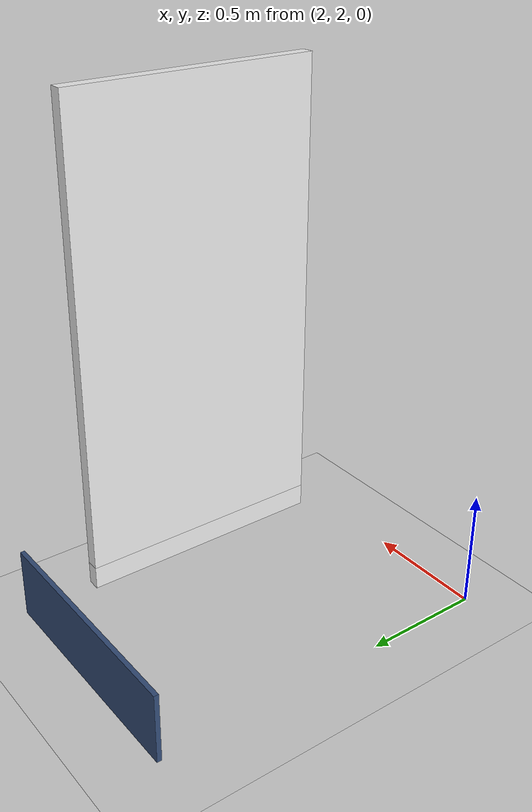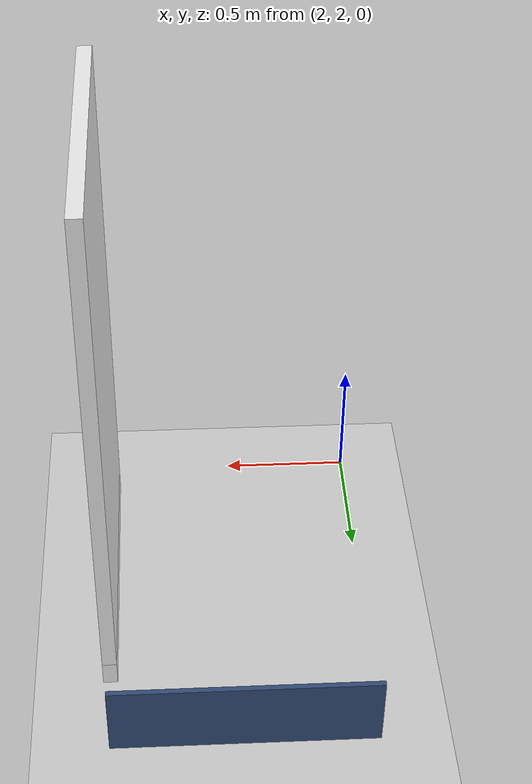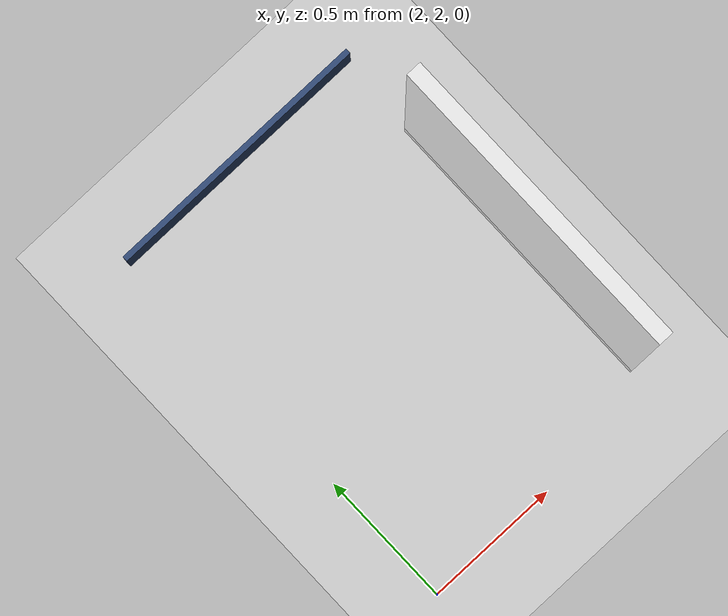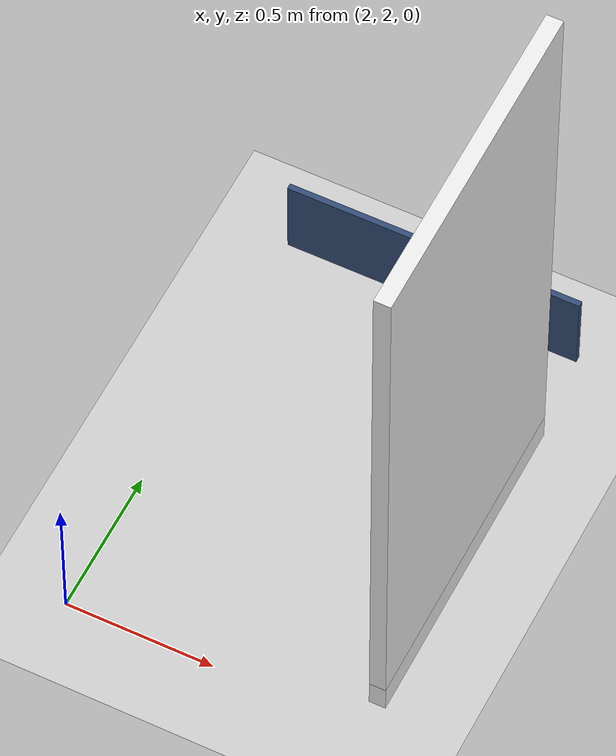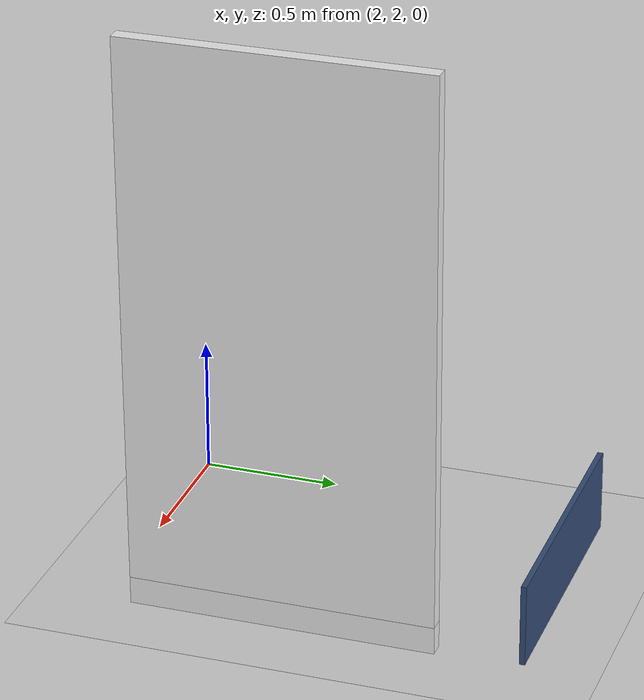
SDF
<sdf version="1.6">
 <world name="default">
  <model name="ground_plane">
   <static>1</static>
   <link name="link">
    <collision name="collision">
     <geometry><plane><normal>0 0 1</normal><size>100 100</size></plane></geometry>
     <surface><friction><ode><mu>100</mu><mu2>50</mu2></ode></friction></surface>
    </collision>
    <visual name="visual">
     <cast_shadows>0</cast_shadows>
     <geometry><plane><normal>0 0 1</normal><size>100 100</size></plane></geometry>
     <material>
      <script><uri>file://media/materials/scripts/gazebo.material</uri><name>Gazebo/Grey</name></script>
     </material>
    </visual>
   </link>
  </model>
  <model name="full_wall_55_1100_2090_clone_clone">
   <link name="link">
    <inertial>
     <mass>50</mass>
     <inertia><ixx>1</ixx><ixy>0</ixy><ixz>0</ixz><iyy>1</iyy><iyz>0</iyz><izz>1</izz></inertia>
    </inertial>
    <visual name="bottom_frame">
     <pose>0 0 0.05 0 -0 0</pose>
     <geometry><box><size>0.055 1.1 0.1</size></box></geometry>
     <material>
      <script><uri>model://base_materials/color/scripts</uri><name>hsr_color/white</name></script>
     </material>
    </visual>
    <collision name="collision_bottom_frame">
     <pose>0 0 0.05 0 -0 0</pose>
     <geometry><box><size>0.055 1.1 0.1</size></box></geometry>
    </collision>
    <visual name="wall">
     <pose>0 0 1.095 0 -0 0</pose>
     <geometry><box><size>0.055 1.1 1.99</size></box></geometry>
     <material>
      <script>
       <uri>model://base_materials/wall/scripts</uri>
       <uri>model://base_materials/wall/textures</uri>
       <name>wall/white_noise</name>
      </script>
     </material>
    </visual>
    <collision name="collision_wall">
     <pose>0 0 1.095 0 -0 0</pose>
     <geometry><box><size>0.055 1.1 1.99</size></box></geometry>
    </collision>
    <velocity_decay><linear>0</linear><angular>0</angular></velocity_decay>
   </link>
   <static>1</static>
   <pose>3 2.65 0 0 -0 0</pose>
  </model>
  <model name="low_wall_clone">
   <link name="link">
    <inertial>
     <mass>50</mass>
     <inertia><ixx>1</ixx><ixy>0</ixy><ixz>0</ixz><iyy>1</iyy><iyz>0</iyz><izz>1</izz></inertia>
    </inertial>
    <visual name="wall">
     <pose>0 0 0.15 0 -0 0</pose>
     <geometry><box><size>0.02 1 0.3</size></box></geometry>
     <material>
      <ambient>0.392 0.584 0.929 1</ambient>
      <diffuse>0.196 0.292 0.4645 1</diffuse>
      <specular>0 0 0 1</specular>
     </material>
    </visual>
    <collision name="collision_wall">
     <pose>0 0 0.15 0 -0 0</pose>
     <geometry><box><size>0.02 1 0.3</size></box></geometry>
    </collision>
    <velocity_decay><linear>0</linear><angular>0</angular></velocity_decay>
   </link>
   <static>1</static>
   <pose>2.5 3.5 0 0 0 -1.57</pose>
  </model>
 </world>
</sdf>
